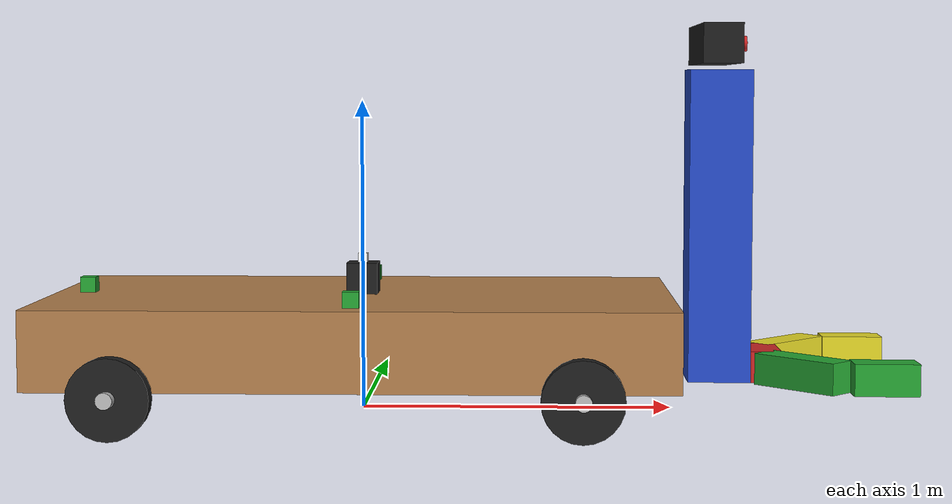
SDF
<?xml version="1.0"?>

<sdf version="1.4">
    <model name="trevor">
        <static>false</static>
        <pose>0 0 0 0 0 0</pose> <!-- dimensions are measured from the center of the model-->

        <include>
            <uri>model://chassis</uri>
            <pose>0 0 0 0 0 0</pose>
        </include>

        <include>
            <uri>model://gripper</uri>
            <pose>1.3 0 0.1 0 0 0</pose>
            <name>front_gripper</name>
        </include>

        <include>
            <uri>model://imu_mount</uri>
            <pose>0 0 0.375 0 0 0</pose>
            <name>primary_imu</name>
        </include>

        <include>
            <uri>model://stereo</uri>
            <pose>1.2 0 1.18 0 0 0</pose>
        </include>

        <include>
            <uri>model://ultrasonic</uri>
            <pose>0 -0.4 0.375 0 0 1.5707</pose>
            <name>left_sensor</name>
        </include>

        <include>
            <uri>model://ultrasonic</uri>
            <pose>0 0.4 0.375 0 0 -1.5707</pose>
            <name>right_sensor</name>
        </include>

        <include>
            <uri>model://ultrasonic</uri>
            <pose>1.425 0 0.12 0 0 3.1416</pose>
            <name>front_sensor</name>
        </include>

        <include>
            <uri>model://ultrasonic</uri>
            <pose>-0.9 0 0.375 0 0 0</pose>
            <name>back_sensor</name>
        </include>

        <include>
            <uri>model://wheel</uri>
            <pose>-0.7 0.6 0.125 0 0 0</pose>
            <name>left_rear_wheel</name>
        </include>

        <include>
            <uri>model://wheel</uri>
            <pose>0.7 0.6 0.125 0 0 0</pose>
            <name>left_front_wheel</name>
        </include>

        <include>
            <uri>model://wheel</uri>
            <pose>-0.7 -0.6 0.125 0 0 0</pose>
            <name>right_rear_wheel</name>
        </include>

        <include>
            <uri>model://wheel</uri>
            <pose>0.7 -0.6 0.125 0 0 0</pose>
            <name>right_front_wheel</name>
        </include>

        <joint name="left_rear" type="revolute">
            <pose>0 0 0 0 0 0</pose>
            <child>left_rear_wheel::wheel</child>
            <parent>chassis::platform</parent>
           <axis>
                <dynamics>
                    <damping>0.5</damping>
                    <friction>0.5</friction>
                </dynamics>
                <xyz>0 1 0</xyz>
            </axis>
        </joint>

        <joint name="left_front" type="revolute">
            <pose>0 0 0 0 0 0</pose>
            <child>left_front_wheel::wheel</child>
            <parent>chassis::platform</parent>
           <axis>
                <dynamics>
                    <damping>0.5</damping>
                    <friction>0.5</friction>
                </dynamics>
                <xyz>0 1 0</xyz>
            </axis>
        </joint>

        <joint name="right_rear" type="revolute">
            <pose>0 0 0 0 0 0</pose>
            <child>right_rear_wheel::wheel</child>
            <parent>chassis::platform</parent>
           <axis>
                <dynamics>
                    <damping>0.5</damping>
                    <friction>0.5</friction>
                </dynamics>
                <xyz>0 1 0</xyz>
            </axis>
        </joint>

        <joint name="right_front" type="revolute">
            <pose>0 0 0 0 0 0</pose>
            <child>right_front_wheel::wheel</child>
            <parent>chassis::platform</parent>
           <axis>
                <dynamics>
                    <damping>0.5</damping>
                    <friction>0.5</friction>
                </dynamics>
                <xyz>0 1 0</xyz>
            </axis>
        </joint>

        <plugin name="SkidSteerDrivePlugin" filename="libSkidSteerDrivePlugin.so">
            <right_front>right_front_wheel</right_front>
            <right_rear>right_rear_wheel</right_rear>
            <left_front>left_front_wheel</left_front>
            <left_rear>left_rear_wheel</left_rear>
            <max_force>100.0</max_force>
        </plugin>

        <joint name="chassis_gripper_joint" type="revolute">
            <parent>chassis::platform</parent>
            <child>front_gripper::guide_rail</child>
            <axis>
                <limit>
                    <lower>-1</lower>
                    <upper>1</upper>
                </limit>
                <xyz>0 0 1</xyz>
            </axis>
        </joint>

        <joint name="chassis_imu_joint" type="revolute">
            <parent>chassis::platform</parent>
            <child>primary_imu::payload</child>
            <axis>
                <limit>
                    <lower>0</lower>
                    <upper>0</upper>
                </limit>
                <xyz>0 0 1</xyz>
            </axis>
        </joint>

        <joint name="gripper_stereo_joint" type="revolute">
            <parent>front_gripper::guide_rail</parent>
            <child>stereo::mount</child>
            <axis>
                <limit>
                    <lower>0</lower>
                    <upper>0</upper>
                </limit>
                <xyz>0 0 1</xyz>
            </axis>
        </joint>

        <joint name="chassis_left_sensor_joint" type="revolute">
            <parent>chassis::platform</parent>
            <child>left_sensor::sensor_mount</child>
            <axis>
                <limit>
                    <lower>0</lower>
                    <upper>0</upper>
                </limit>
                <xyz>0 0 1</xyz>
            </axis>
        </joint>

        <joint name="chassis_right_sensor_joint" type="revolute">
            <parent>chassis::platform</parent>
            <child>right_sensor::sensor_mount</child>
            <axis>
                <limit>
                    <lower>0</lower>
                    <upper>0</upper>
                </limit>
                <xyz>0 0 1</xyz>
            </axis>
        </joint>

        <joint name="chassis_back_sensor_joint" type="revolute">
            <parent>chassis::platform</parent>
            <child>back_sensor::sensor_mount</child>
            <axis>
                <limit>
                    <lower>0</lower>
                    <upper>0</upper>
                </limit>
                <xyz>0 0 1</xyz>
            </axis>
        </joint>

        <joint name="gripper_front_sensor_joint" type="revolute">
            <parent>front_gripper::guide_rail</parent>
            <child>front_sensor::sensor_mount</child>
            <axis>
                <limit>
                    <lower>0</lower>
                    <upper>0</upper>
                </limit>
                <xyz>0 0 1</xyz>
            </axis>
        </joint>

    </model>
</sdf>

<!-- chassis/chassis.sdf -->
<sdf version="1.4">
    <model name="chassis">
        <static>false</static>
        <pose>0 0 0 0 0 0</pose><!-- global pose -->

        <link name="platform">
            <pose>0 0 0.25 0 0 0</pose>
            <inertial>
                <pose>0 0 0 0 0 0</pose>
                <inertia>
                    <!-- http://en.wikipedia.org/wiki/List_of_moment_of_inertia_tensors -->
                    <ixx>0.5</ixx>
                    <ixy>0.0</ixy>
                    <ixz>0.0</ixz>
                    <iyy>1</iyy>
                    <iyz>0.0</iyz>
                    <izz>0.1</izz>
                </inertia>
                <mass>20</mass>
            </inertial>
            <collision name="platform_collision">
                <geometry>
                    <box>
                        <size>2 1 0.25</size>
                    </box>
                </geometry>
            </collision>
            <visual name="platform_visual">
                <geometry>
                    <box>
                        <size>2 1 0.25</size>
                    </box>
                </geometry>
                <material>
                    <script>
                        <uri>file://media/materials/scripts/gazebo.material</uri>
                        <name>Gazebo/Wood</name>
                    </script>
                </material>
            </visual>
        </link>
    </model>
</sdf>

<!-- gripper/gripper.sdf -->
<sdf version="1.4">
    <model name="gripper">
        <static>false</static>
        <pose>0 0 0 0 0 0</pose> <!-- dimensions are measured from the center of the model-->

        <link name="guide_rail">
            <pose>-0.15 0.0 0.5 0 0 0</pose>
            <inertial>
                <pose>0 0 0 0 0 0</pose><!-- at the center of the block-->
                <inertia>
                    <!-- values for mass = 10 -->
                    <ixx>0.3333</ixx>
                    <ixy>0</ixy>
                    <ixz>0</ixz>
                    <iyy>0.3333</iyy>
                    <iyz>0</iyz>
                    <izz>0.0667</izz>
                </inertia>
                <mass>10.0</mass>
            </inertial>
            <collision name="guide_rail_collision">
                <geometry>
                    <box>
                        <size>0.2 0.2 1.0</size>
                    </box>
                </geometry>
            </collision>
            <visual name="guide_rail_visual">
                <geometry>
                    <box>
                        <size>0.2 0.2 1.0</size>
                    </box>
                </geometry>
                <material>
                    <script>
                        <uri>file://media/materials/scripts/gazebo.material</uri>
                        <name>Gazebo/Blue</name>
                    </script>
                </material>
            </visual>
        </link>
        <link name="palm">
            <pose>0.0 0.0 0.05 0 0 0</pose>
            <inertial>
                <inertia>
                    <!-- assign some small values for the physics engine to evaluate, change them later on -->
                    <ixx>0.01</ixx>
                    <ixy>0</ixy>
                    <ixz>0</ixz>
                    <iyy>0.01</iyy>
                    <iyz>0</iyz>
                    <izz>0.01</izz>
                </inertia>
                <mass>0.5</mass>
            </inertial>
            <collision name="palm_collision">
                <geometry>
                    <box>
                        <size>0.1 0.2 0.1</size>
                    </box>
                </geometry>
            </collision>
            <visual name="palm_visual">
                <geometry>
                    <box>
                        <size>0.1 0.2 0.1</size>
                    </box>
                </geometry>
                <material>
                    <script>
                        <uri>file://media/materials/scripts/gazebo.material</uri>
                        <name>Gazebo/Red</name>
                    </script>
                </material>
            </visual>
        </link>
        <link name="left_finger">
            <pose>0.1 0.2 0.05 0 0 -0.78539</pose>
            <inertial>
                <inertia>
                    <ixx>0.01</ixx>
                    <ixy>0</ixy>
                    <ixz>0</ixz>
                    <iyy>0.01</iyy>
                    <iyz>0</iyz>
                    <izz>0.01</izz>
                </inertia>
                <mass>0.1</mass>
            </inertial>
            <collision name="left_finger_collision">
                <geometry>
                    <box>
                        <size>0.1 0.3 0.1</size>
                    </box>
                </geometry>
            </collision>
            <visual name="left_finger_visual">
                <geometry>
                    <box>
                        <size>0.1 0.3 0.1</size>
                    </box>
                </geometry>
                <material>
                    <script>
                        <uri>file://media/materials/scripts/gazebo.material</uri>
                        <name>Gazebo/Yellow</name>
                    </script>
                </material>
            </visual>
        </link>
        <link name="left_finger_tip">
            <pose>0.336 0.3 0.05 0 0 1.5707</pose>
            <inertial>
                <inertia>
                    <ixx>0.01</ixx>
                    <ixy>0</ixy>
                    <ixz>0</ixz>
                    <iyy>0.01</iyy>
                    <iyz>0</iyz>
                    <izz>0.01</izz>
                </inertia>
                <mass>0.1</mass>
            </inertial>
            <collision name="left_finger_tip_collision">
                <geometry>
                    <box>
                        <size>0.1 0.2 0.1</size>
                    </box>
                </geometry>
            </collision>
            <visual name="left_finger_tip_visual">
                <geometry>
                    <box>
                        <size>0.1 0.2 0.1</size>
                    </box>gedit ~/.gazebo/models/my_gripper/simple_gripper.sdf
                </geometry>
                <material>
                    <script>
                        <uri>file://media/materials/scripts/gazebo.material</uri>
                        <name>Gazebo/Yellow</name>
                    </script>
                </material>
            </visual>
        </link>
        <link name="right_finger">
            <pose>0.1 -0.2 0.05 0 0 .78539</pose>
            <inertial>
                <inertia>
                    <ixx>0.01</ixx>
                    <ixy>0</ixy>
                    <ixz>0</ixz>
                    <iyy>0.01</iyy>
                    <iyz>0</iyz>
                    <izz>0.01</izz>
                </inertia>
                <mass>0.1</mass>
            </inertial>
            <collision name="right_finger_collision">
                <geometry>
                    <box>
                        <size>0.1 0.3 0.1</size>
                    </box>
                </geometry>
            </collision>
            <visual name="right_finger_visual">
                <geometry>
                    <box>
                        <size>0.1 0.3 0.1</size>
                    </box>
                </geometry>
                <material>
                    <script>
                        <uri>file://media/materials/scripts/gazebo.material</uri>
                        <name>Gazebo/Green</name>
                    </script>
                </material>
            </visual>
        </link>
        <link name="right_finger_tip">
            <pose>0.336 -0.3 0.05 0 0 1.5707</pose>
            <inertial>
                <inertia>
                    <ixx>0.01</ixx>
                    <ixy>0</ixy>
                    <ixz>0</ixz>
                    <iyy>0.01</iyy>
                    <iyz>0</iyz>
                    <izz>0.01</izz>
                </inertia>
                <mass>0.1</mass>
            </inertial>
            <collision name="tight_finger_tip_collision">
                <geometry>
                    <box>
                        <size>0.1 0.2 0.1</size>
                    </box>
                </geometry>
            </collision>
            <visual name="right_finger_tip_visual">
                <geometry>
                    <box>
                        <size>0.1 0.2 0.1</size>
                    </box>
                </geometry>
                <material>
                    <script>
                        <uri>file://media/materials/scripts/gazebo.material</uri>
                        <name>Gazebo/Green</name>
                    </script>
                </material>
            </visual>
        </link>

        <joint name="palm_left_finger" type="revolute">
            <pose>0 -0.15 0 0 0 0</pose>
            <child>left_finger</child>
            <parent>palm</parent>
            <axis>
                <limit>
                    <lower>-0.4</lower>
                    <upper>0.4</upper>
                </limit>
                <xyz>0 0 1</xyz>
            </axis>
        </joint>
        <joint name="left_finger_tip" type="revolute">
            <pose>0 0.1 0 0 0 0</pose>
            <child>left_finger_tip</child>
            <parent>left_finger</parent>
            <axis>
                <limit>
                    <lower>-0.4</lower>
                    <upper>0.4</upper>
                </limit>
                <xyz>0 0 1</xyz>
            </axis>
        </joint>
        <joint name="palm_right_finger" type="revolute">
            <pose>0 0.15 0 0 0 0</pose>
            <child>right_finger</child>
            <parent>palm</parent>
            <axis>
                <limit>
                    <lower>-0.4</lower>
                    <upper>0.4</upper>
                </limit>
                <xyz>0 0 1</xyz>
            </axis>
        </joint>
        <joint name="right_finger_tip" type="revolute">
            <pose>0 0.1 0 0 0 0</pose>
            <child>right_finger_tip</child>
            <parent>right_finger</parent>
            <axis>
                <limit>
                    <lower>-0.4</lower>
                    <upper>0.4</upper>
                </limit>
                <xyz>0 0 1</xyz>
            </axis>
        </joint>
        <joint name="palm_riser" type="prismatic">
            <child>palm</child>
            <parent>guide_rail</parent>
            <axis>
                <limit>
                    <lower>0</lower>
                    <upper>0.9</upper>
                </limit>
                <xyz>0 0 1</xyz>
            </axis>
        </joint>

    </model>
</sdf>

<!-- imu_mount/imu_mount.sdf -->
<sdf version="1.4">
    <model name="imu_mount">
        <static>false</static>
        <pose>0 0 0 0 0 0</pose> <!-- dimensions are measured from the center of the model-->

        <link name="payload">
            <pose>0 0 0.05 0 0 0</pose>
            <inertial>
                <pose>0 0 0 0 0 0</pose><!-- at the center of the block-->
                <inertia>
                    <!-- values for mass = 10 -->
                    <ixx>0.0333</ixx>
                    <ixy>0</ixy>
                    <ixz>0</ixz>
                    <iyy>0.0333</iyy>
                    <iyz>0</iyz>
                    <izz>0.0067</izz>
                </inertia>
                <mass>1.0</mass>
            </inertial>
            <collision name="payload_collision">
                <geometry>
                    <box>
                        <size>0.1 0.1 0.1</size>
                    </box>
                </geometry>
            </collision>
            <visual name="payload_visual">
                <geometry>
                    <box>
                        <size>0.1 0.1 0.1</size>
                    </box>
                </geometry>
                <material>
                    <script>
                        <uri>file://media/materials/scripts/gazebo.material</uri>
                        <name>Gazebo/Black</name>
                    </script>
                </material>
            </visual>
        </link>
        <link name="imu_sensor">
            <pose>0 0 0.115 0 0 0</pose>
            <inertial>
                <pose>0 0 0 0 0 0</pose>
                <inertia>
                    <!-- assign some small values for the physics engine to evaluate, change them later on -->
                    <ixx>0.001</ixx>
                    <ixy>0</ixy>
                    <ixz>0</ixz>
                    <iyy>0.001</iyy>
                    <iyz>0</iyz>
                    <izz>0.001</izz>
                </inertia>
                <mass>0.05</mass>
            </inertial>
            <collision name="imu_collision">
                <geometry>
                    <box>
                        <size>0.03 0.03 0.03</size>
                    </box>
                </geometry>
            </collision>
            <visual name="imu_visual">
                <geometry>
                    <box>
                        <size>0.03 0.03 0.03</size>
                    </box>
                </geometry>
                <material>
                    <script>
                        <uri>file://media/materials/scripts/gazebo.material</uri>
                        <name>Gazebo/White</name>
                    </script>
                </material>
            </visual>
            <sensor name="main_imu" type="imu">
                <always_on>1</always_on>
                <update_rate>50</update_rate>
                <visualize>1</visualize>
                <pose>0 0 0 0 0 0</pose>
                <imu>
                    <topic>/imu_main/data_raw</topic>
                    <noise>
                        <type>gaussian</type>
                        <rate>  <!-- in rad/s -->
                            <mean>0</mean>
                            <stddev>0</stddev>
                            <bias_mean>0</bias_mean>
                            <bias_stddev>0</bias_stddev>
                        </rate>
                        <accel> <!-- in m/s^2 -->
                            <mean>0</mean>
                            <stddev>0</stddev>
                            <bias_mean>0</bias_mean>
                            <bias_stddev>0</bias_stddev>
                        </accel>
                    </noise>
                </imu>
            </sensor>
        </link>

        <joint name="imu_mount" type="revolute">
            <child>imu_sensor</child>
            <parent>payload</parent>
            <axis>
                <limit>
                    <lower>0</lower>
                    <upper>0</upper>
                </limit>
                <xyz>0 0 1</xyz>
            </axis>
        </joint>

    </model>
</sdf>

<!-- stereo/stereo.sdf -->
<sdf version="1.4">
    <model name="stereo">
        <static>false</static>
        <pose>0 0 0 0 0 0</pose> <!-- dimensions are measured from the center of the model-->

        <link name="mount">
            <pose>-0.0625 0.0 0 0 0 0</pose>
            <inertial>
                <pose>0 0 0 0 0 0</pose><!-- at the center of the block-->
                <inertia>
                    <!-- values for mass = 10 -->
                    <ixx>0.01</ixx>
                    <ixy>0</ixy>
                    <ixz>0</ixz>
                    <iyy>0.01</iyy>
                    <iyz>0</iyz>
                    <izz>0.01</izz>
                </inertia>
                <mass>1</mass>
            </inertial>
            <collision name="housing_collision">
                <geometry>
                    <box>
                        <size>0.125 0.5 0.125</size>
                    </box>
                </geometry>
            </collision>
            <visual name="housing_visual">
                <geometry>
                    <box>
                        <size>0.125 0.5 0.125</size>
                    </box>
                </geometry>
                <material>
                    <script>
                        <uri>file://media/materials/scripts/gazebo.material</uri>
                        <name>Gazebo/Black</name>
                    </script>
                </material>
            </visual>
        </link>
        <link name="right_camera">
            <pose>0.0 -0.1 0 0 1.5707 0</pose>
            <inertial>
                <inertia>
                    <!-- assign some small values for the physics engine to evaluate, change them later on -->
                    <ixx>0.01</ixx>
                    <ixy>0</ixy>
                    <ixz>0</ixz>
                    <iyy>0.01</iyy>
                    <iyz>0</iyz>
                    <izz>0.01</izz>
                </inertia>
                <mass>0.5</mass>
            </inertial>
            <collision name="camera_collision">
                <geometry>
                    <cylinder>
                        <radius>0.025</radius>
                        <length>0.05</length>
                    </cylinder>
                </geometry>
            </collision>
            <visual name="camera_visual">
                <geometry>
                    <cylinder>
                        <radius>0.025</radius>
                        <length>0.05</length>
                    </cylinder>
                </geometry>
                <material>
                    <script>
                        <uri>file://media/materials/scripts/gazebo.material</uri>
                        <name>Gazebo/Red</name>
                    </script>
                </material>
            </visual>
            <sensor name="right_camera" type="camera">
                <always_on>1</always_on>
                <update_rate>50</update_rate>
                <visualize>0</visualize>
                <pose>0 0 0 0 1.5708 0</pose>
                <camera>
                    <pose>0 0 0 0 0 0</pose>
                    <horizontal_fov>1.047</horizontal_fov>
                    <image>
                        <width>320</width>
                        <height>240</height>
                    </image>
                    <clip>
                        <near>0.1</near>
                        <far>100</far>
                    </clip>
                </camera>
            </sensor>
        </link>
        <link name="left_camera">
            <pose>0 0.1 0 0 1.5707 0</pose>
            <inertial>
                <inertia>
                    <ixx>0.01</ixx>
                    <ixy>0</ixy>
                    <ixz>0</ixz>
                    <iyy>0.01</iyy>
                    <iyz>0</iyz>
                    <izz>0.01</izz>
                </inertia>
                <mass>0.1</mass>
            </inertial>
            <collision name="camera_collision">
                <geometry>
                    <cylinder>
                        <radius>0.025</radius>
                        <length>0.05</length>
                    </cylinder>
                </geometry>
            </collision>
            <visual name="camera_visual">
                <geometry>
                    <cylinder>
                        <radius>0.025</radius>
                        <length>0.05</length>
                    </cylinder>
                </geometry>
                <material>
                    <script>
                        <uri>file://media/materials/scripts/gazebo.material</uri>
                        <name>Gazebo/Red</name>
                    </script>
                </material>
            </visual>
            <sensor name="left_camera" type="camera">
                <always_on>1</always_on>
                <update_rate>50</update_rate>
                <visualize>0</visualize>
                <pose>0 0 0 0 1.5708 0</pose>
                <camera>
                    <pose>0 0 0 0 0 0</pose>
                    <horizontal_fov>1.047</horizontal_fov>
                    <image>
                        <width>320</width>
                        <height>240</height>
                    </image>
                    <clip>
                        <near>0.1</near>
                        <far>100</far>
                    </clip>
                    <!-- save and noise to be done if required -->
                </camera>
            </sensor>
        </link>

        <joint name="right_mount" type="prismatic">
            <child>right_camera</child>
            <parent>mount</parent>
            <axis>
                <limit>
                    <lower>0</lower>
                    <upper>0</upper>
                </limit>
                <xyz>0 0 1</xyz>
            </axis>
        </joint>
        <joint name="left_mount" type="prismatic">
            <child>left_camera</child>
            <parent>mount</parent>
            <axis>
                <limit>
                    <lower>0</lower>
                    <upper>0</upper>
                </limit>
                <xyz>0 0 1</xyz>
            </axis>
        </joint>

    </model>
</sdf>

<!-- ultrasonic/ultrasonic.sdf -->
<sdf version="1.4">
    <model name="ultrasonic">
        <static>false</static>
        <pose>0 0 0 0 0 0</pose> <!-- dimensions are measured from the center of the model-->

        <link name="sensor_mount">
            <pose>0 0 0.025 0 1.5707 0</pose>
            <inertial>
                <pose>0 0 0 0 0 0</pose><!-- at the center of the block-->
                <inertia>
                    <!-- values for mass = 10 -->
                    <ixx>0.003</ixx>
                    <ixy>0</ixy>
                    <ixz>0</ixz>
                    <iyy>0.003</iyy>
                    <iyz>0</iyz>
                    <izz>0.003</izz>
                </inertia>
                <mass>10.0</mass>
            </inertial>
            <collision name="sensor_mount_collision">
                <geometry>
                    <box>
                        <size>0.05 0.05 0.05</size>
                    </box>
                </geometry>
            </collision>
            <visual name="sensor_mount_visual">
                <geometry>
                    <box>
                        <size>0.05 0.05 0.05</size>
                    </box>
                </geometry>
                <material>
                    <script>
                        <uri>file://media/materials/scripts/gazebo.material</uri>
                        <name>Gazebo/Green</name>
                    </script>
                </material>
            </visual>

            <sensor name="ultrasonic" type="sonar">
                <always_on>1</always_on>
                <update_rate>20</update_rate>
                <visualize>1</visualize>
                <pose>0 0 0 0 0 0</pose>
                <sonar>
                    <min>0.05</min>
                    <max>100</max>
                    <radius>2</radius>
                </sonar>
            </sensor>

        </link>

    </model>
</sdf>

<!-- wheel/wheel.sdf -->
<sdf version="1.4">
    <model name="wheel">
        <static>false</static>
        <pose>0 0 0.125 0 0 0</pose>

        <link name="wheel">
            <pose>0 0 0 0 1.5707 1.5707</pose>
            <inertial>
                <pose>0 0 0 0 0 0</pose><!-- at the center of the block-->
                <inertia>
                    <!-- values for mass = 10 -->
                    <ixx>0.0667</ixx>
                    <ixy>0</ixy>
                    <ixz>0</ixz>
                    <iyy>0.0667</iyy>
                    <iyz>0</iyz>
                    <izz>0.0333</izz>
                </inertia>
                <mass>5.0</mass>
            </inertial>
            <collision name="wheel_collision">
                <geometry>
                    <cylinder>
                        <radius>.125</radius>
                        <length>.05</length>
                    </cylinder>
                </geometry>
            </collision>
            <visual name="wheel_visual">
                <geometry>
                    <cylinder>
                        <radius>.125</radius>
                        <length>.05</length>
                    </cylinder>
                </geometry>
                <material>
                    <script>
                        <uri>file://media/materials/scripts/gazebo.material</uri>
                        <name>Gazebo/Black</name>
                    </script>
                </material>
            </visual>
        </link>
        <link name="axle">
            <pose>0 0 0 1.507 0 0</pose>
            <inertial>
                <pose>0 0 0 0 0 0</pose><!-- at the center of the block-->
                <inertia>
                    <!-- values for mass = 10 -->
                    <ixx>0.0067</ixx>
                    <ixy>0</ixy>
                    <ixz>0</ixz>
                    <iyy>0.0067</iyy>
                    <iyz>0</iyz>
                    <izz>0.0033</izz>
                </inertia>
                <mass>0.5</mass>
            </inertial>
            <collision name="axle_collision">
                <geometry>
                    <cylinder>
                        <radius>.025</radius>
                        <length>.125</length>
                    </cylinder>
                </geometry>
            </collision>
            <visual name="axle_visual">
                <geometry>
                    <cylinder>
                        <radius>.025</radius>
                        <length>.125</length>
                    </cylinder>
                </geometry>
            </visual>
        </link>

        <joint name="wheel_axle" type="revolute">
            <pose>0 0 0 0 0 0</pose>
            <child>wheel</child>
            <parent>axle</parent>
            <axis>
                <dynamics>
                    <damping>1</damping>
                    <friction>1</friction>
                </dynamics>
                <limit>
                    <lower>0</lower>
                    <upper>0</upper>
                </limit>
                <xyz>0 1 0</xyz>
            </axis>
        </joint>

    </model>
</sdf>
